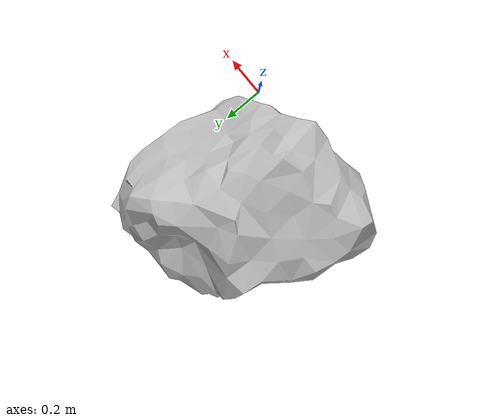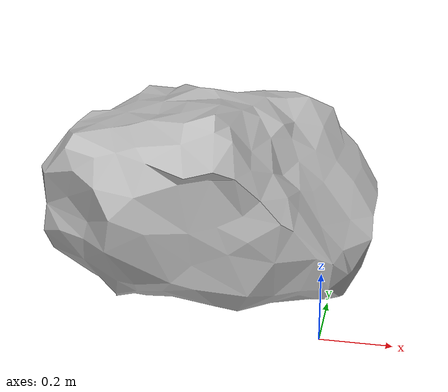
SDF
<?xml version="1.0" ?>
<sdf version="1.5">
  <model name="Rock">
    <pose>0 0 0  0 0 0</pose>
    <static>true</static>
    <link name="link">
      <inertial>
        <mass>40.0</mass>
        <inertia>
          <ixx>1</ixx>
          <ixy>0</ixy>
          <ixz>0</ixz>
          <iyy>1</iyy>
          <iyz>0</iyz>
          <izz>1</izz>
        </inertia>
      </inertial>

      <visual name="visual">
        <geometry>
          <mesh>
            <uri>model://rock/meshes/rock.dae</uri>
          </mesh>
	</geometry>
      </visual>
    </link>
  </model>
</sdf>
